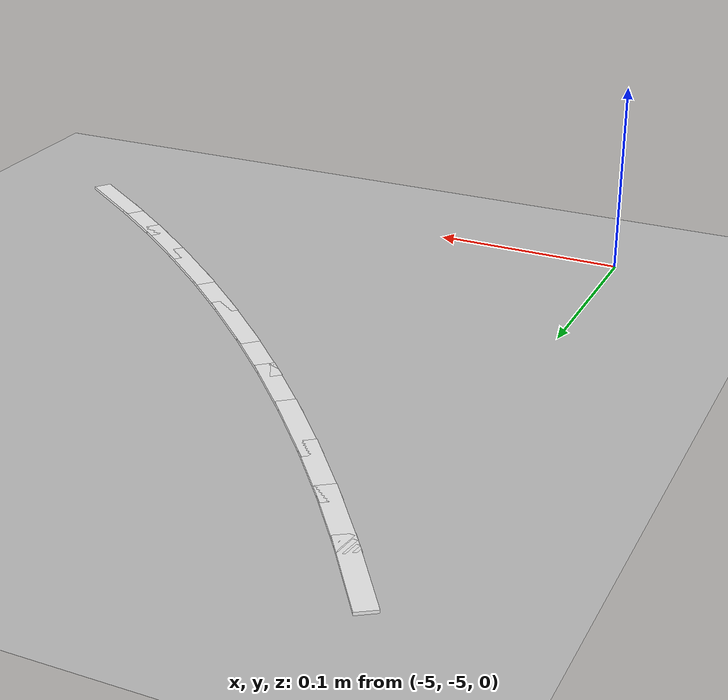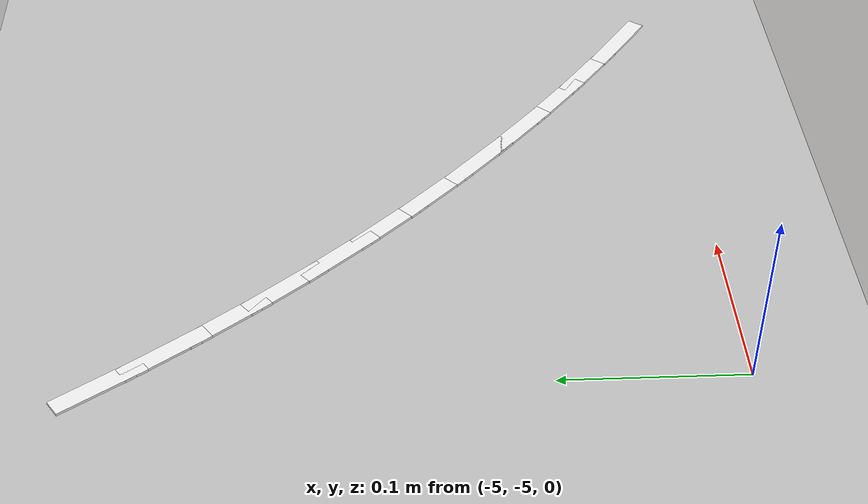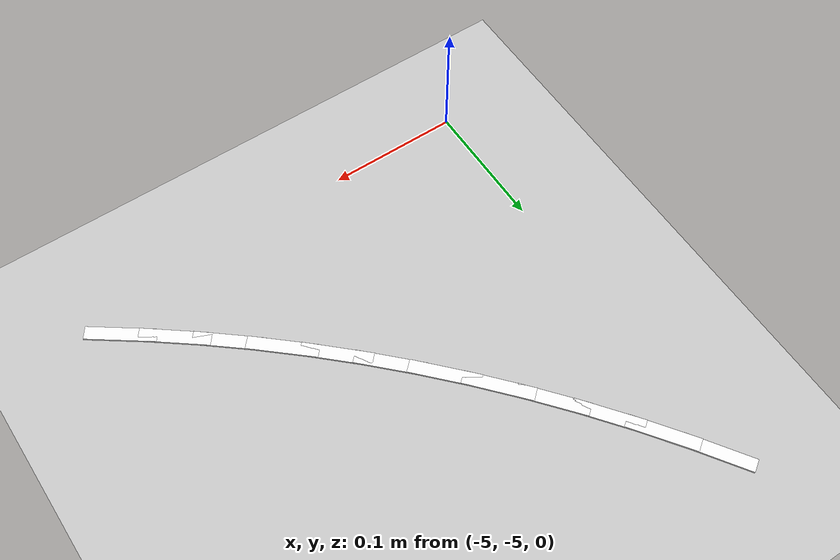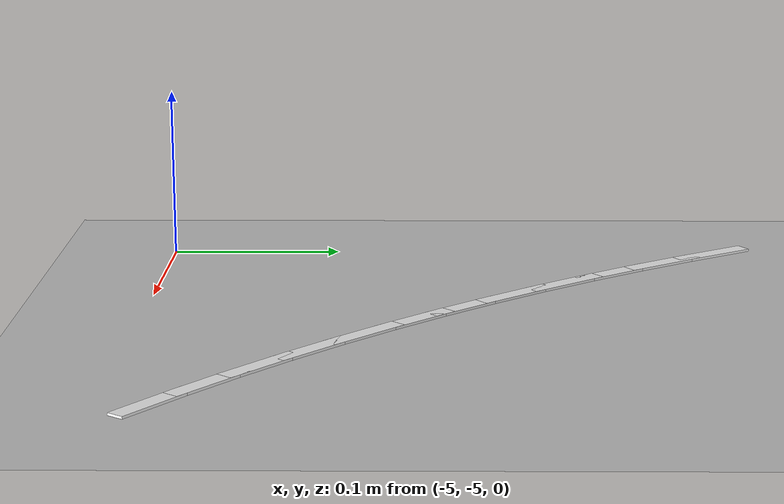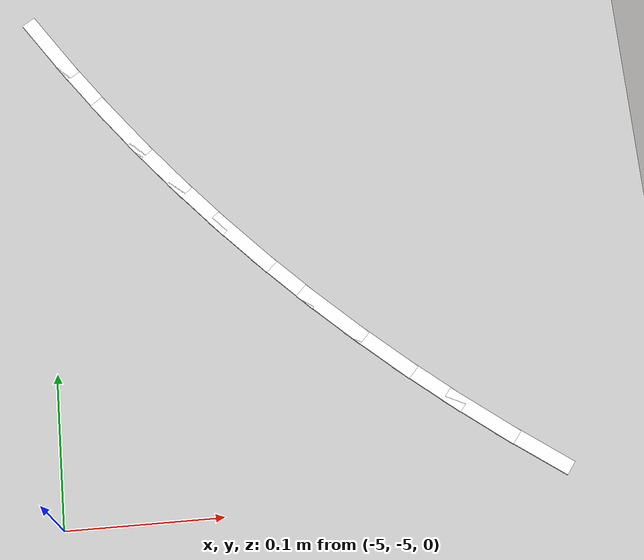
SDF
<sdf version="1.7">
 <world name="default">
  <model name="ground_plane">
   <static>1</static>
   <link name="link">
    <collision name="collision">
     <geometry><plane><normal>0 0 1</normal><size>100 100</size></plane></geometry>
     <surface>
      <contact><collide_bitmask>65535</collide_bitmask></contact>
      <friction><ode><mu>100</mu><mu2>50</mu2></ode></friction>
     </surface>
    </collision>
    <visual name="visual">
     <cast_shadows>0</cast_shadows>
     <geometry><plane><normal>0 0 1</normal><size>100 100</size></plane></geometry>
     <material>
      <script><uri>file://media/materials/scripts/gazebo.material</uri><name>Gazebo/Grey</name></script>
     </material>
    </visual>
   </link>
  </model>
  <model name="lane_line_right_368">
   <static>1</static>
   <link name="link">
    <pose>0 0 -0.004 0 -0 0</pose>
    <visual name="visual">
     <geometry><box><size>0.0521 0.01 0.01</size></box></geometry>
     <material><ambient>1 1 1 1</ambient><diffuse>1 1 1 1</diffuse></material>
    </visual>
    <collision name="collision"><geometry><box><size>0.0521 0.01 0.01</size></box></geometry></collision>
   </link>
   <pose>-4.99498 -4.67061 0 0 0 -0.977741</pose>
  </model>
  <model name="lane_line_right_369">
   <static>1</static>
   <link name="link">
    <pose>0 0 -0.004 0 -0 0</pose>
    <visual name="visual">
     <geometry><box><size>0.0521 0.01 0.01</size></box></geometry>
     <material><ambient>1 1 1 1</ambient><diffuse>1 1 1 1</diffuse></material>
    </visual>
    <collision name="collision"><geometry><box><size>0.0521 0.01 0.01</size></box></geometry></collision>
   </link>
   <pose>-4.97297 -4.70215 0 0 0 -0.945684</pose>
  </model>
  <model name="lane_line_right_370">
   <static>1</static>
   <link name="link">
    <pose>0 0 -0.004 0 -0 0</pose>
    <visual name="visual">
     <geometry><box><size>0.0521 0.01 0.01</size></box></geometry>
     <material><ambient>1 1 1 1</ambient><diffuse>1 1 1 1</diffuse></material>
    </visual>
    <collision name="collision"><geometry><box><size>0.0521 0.01 0.01</size></box></geometry></collision>
   </link>
   <pose>-4.94997 -4.73298 0 0 0 -0.913626</pose>
  </model>
  <model name="lane_line_right_371">
   <static>1</static>
   <link name="link">
    <pose>0 0 -0.004 0 -0 0</pose>
    <visual name="visual">
     <geometry><box><size>0.0521 0.01 0.01</size></box></geometry>
     <material><ambient>1 1 1 1</ambient><diffuse>1 1 1 1</diffuse></material>
    </visual>
    <collision name="collision"><geometry><box><size>0.0521 0.01 0.01</size></box></geometry></collision>
   </link>
   <pose>-4.92599 -4.76305 0 0 0 -0.881569</pose>
  </model>
  <model name="lane_line_right_372">
   <static>1</static>
   <link name="link">
    <pose>0 0 -0.004 0 -0 0</pose>
    <visual name="visual">
     <geometry><box><size>0.0521 0.01 0.01</size></box></geometry>
     <material><ambient>1 1 1 1</ambient><diffuse>1 1 1 1</diffuse></material>
    </visual>
    <collision name="collision"><geometry><box><size>0.0521 0.01 0.01</size></box></geometry></collision>
   </link>
   <pose>-4.90105 -4.79233 0 0 0 -0.849512</pose>
  </model>
  <model name="lane_line_right_373">
   <static>1</static>
   <link name="link">
    <pose>0 0 -0.004 0 -0 0</pose>
    <visual name="visual">
     <geometry><box><size>0.0521 0.01 0.01</size></box></geometry>
     <material><ambient>1 1 1 1</ambient><diffuse>1 1 1 1</diffuse></material>
    </visual>
    <collision name="collision"><geometry><box><size>0.0521 0.01 0.01</size></box></geometry></collision>
   </link>
   <pose>-4.8752 -4.82081 0 0 0 -0.817455</pose>
  </model>
  <model name="lane_line_right_374">
   <static>1</static>
   <link name="link">
    <pose>0 0 -0.004 0 -0 0</pose>
    <visual name="visual">
     <geometry><box><size>0.0521 0.01 0.01</size></box></geometry>
     <material><ambient>1 1 1 1</ambient><diffuse>1 1 1 1</diffuse></material>
    </visual>
    <collision name="collision"><geometry><box><size>0.0521 0.01 0.01</size></box></geometry></collision>
   </link>
   <pose>-4.84844 -4.84844 0 0 0 -0.785398</pose>
  </model>
  <model name="lane_line_right_375">
   <static>1</static>
   <link name="link">
    <pose>0 0 -0.004 0 -0 0</pose>
    <visual name="visual">
     <geometry><box><size>0.0521 0.01 0.01</size></box></geometry>
     <material><ambient>1 1 1 1</ambient><diffuse>1 1 1 1</diffuse></material>
    </visual>
    <collision name="collision"><geometry><box><size>0.0521 0.01 0.01</size></box></geometry></collision>
   </link>
   <pose>-4.82081 -4.8752 0 0 0 -0.753341</pose>
  </model>
  <model name="lane_line_right_376">
   <static>1</static>
   <link name="link">
    <pose>0 0 -0.004 0 -0 0</pose>
    <visual name="visual">
     <geometry><box><size>0.0521 0.01 0.01</size></box></geometry>
     <material><ambient>1 1 1 1</ambient><diffuse>1 1 1 1</diffuse></material>
    </visual>
    <collision name="collision"><geometry><box><size>0.0521 0.01 0.01</size></box></geometry></collision>
   </link>
   <pose>-4.79233 -4.90105 0 0 0 -0.721284</pose>
  </model>
  <model name="lane_line_right_377">
   <static>1</static>
   <link name="link">
    <pose>0 0 -0.004 0 -0 0</pose>
    <visual name="visual">
     <geometry><box><size>0.0521 0.01 0.01</size></box></geometry>
     <material><ambient>1 1 1 1</ambient><diffuse>1 1 1 1</diffuse></material>
    </visual>
    <collision name="collision"><geometry><box><size>0.0521 0.01 0.01</size></box></geometry></collision>
   </link>
   <pose>-4.76305 -4.92599 0 0 0 -0.689227</pose>
  </model>
  <model name="lane_line_right_378">
   <static>1</static>
   <link name="link">
    <pose>0 0 -0.004 0 -0 0</pose>
    <visual name="visual">
     <geometry><box><size>0.0521 0.01 0.01</size></box></geometry>
     <material><ambient>1 1 1 1</ambient><diffuse>1 1 1 1</diffuse></material>
    </visual>
    <collision name="collision"><geometry><box><size>0.0521 0.01 0.01</size></box></geometry></collision>
   </link>
   <pose>-4.73298 -4.94997 0 0 0 -0.65717</pose>
  </model>
  <model name="lane_line_right_379">
   <static>1</static>
   <link name="link">
    <pose>0 0 -0.004 0 -0 0</pose>
    <visual name="visual">
     <geometry><box><size>0.0521 0.01 0.01</size></box></geometry>
     <material><ambient>1 1 1 1</ambient><diffuse>1 1 1 1</diffuse></material>
    </visual>
    <collision name="collision"><geometry><box><size>0.0521 0.01 0.01</size></box></geometry></collision>
   </link>
   <pose>-4.70215 -4.97297 0 0 0 -0.625113</pose>
  </model>
 </world>
</sdf>
